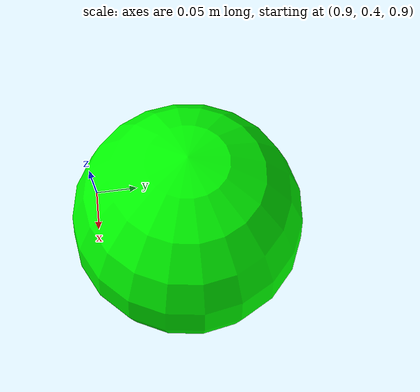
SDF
<?xml version="1.0" ?>
<sdf version="1.6">
  <world name="default">
    <include>
      <uri>model://ground_plane</uri>
    </include>

    <include>
      <uri>model://sun</uri>
    </include>

    <include>
      <uri>model://ball</uri>
    </include>

    <physics type="ode">
      <real_time_factor>100</real_time_factor>
      <max_step_size>0.002</max_step_size>
      <real_time_update_rate>10000.0</real_time_update_rate>
      <gravity>
	0.0 0.0 -9.81
      </gravity>
    </physics>

    <gui fullscreen='0'>
      <camera name='user_camera'>
        <pose frame=''>2.69836 -0.874828 2.04939 0 0.399643 2.75619</pose>
        <view_controller>orbit</view_controller>
        <projection_type>perspective</projection_type>
      </camera>
    </gui>

  </world>
</sdf>

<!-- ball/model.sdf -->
<sdf version='1.4'>
  <model name="ball">
  	    <pose>1 0.5 1 0 0 0</pose>
        <link name='ball'>
          <gravity>false</gravity>
            <collision name='collision'>
              <geometry>
              <sphere>
                <radius>0.1</radius>
              </sphere>
              </geometry>
            </collision>

            <visual name='visual'>
              <geometry>
              <sphere>
                <radius>0.11</radius>
              </sphere>
              </geometry>
              <material>
                <ambient>0 1 0 1</ambient>
                <diffuse>0 1 0 1</diffuse>
              </material>
            </visual>
          </link>
  </model>
</sdf>
